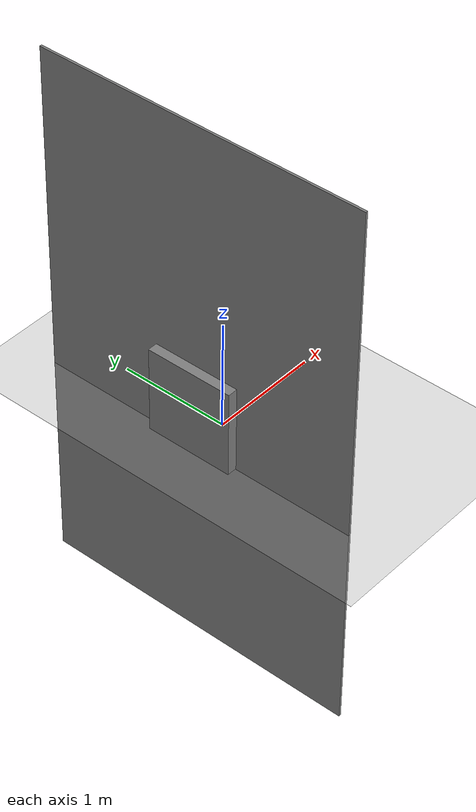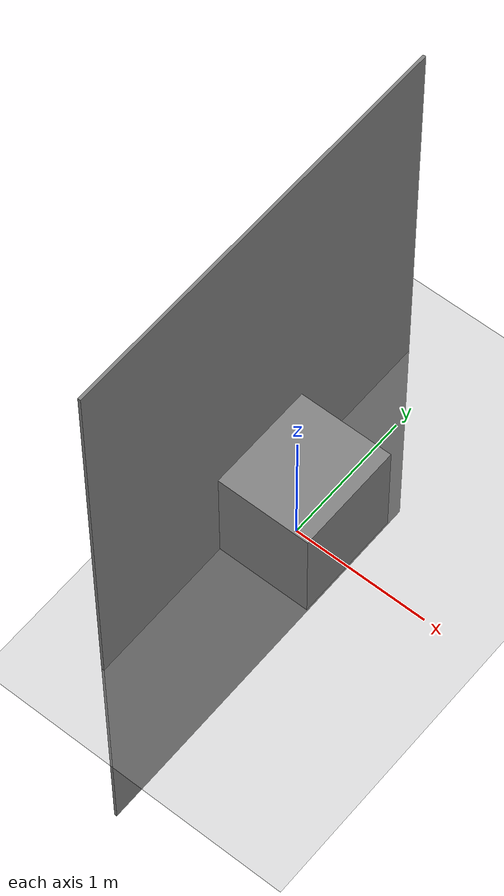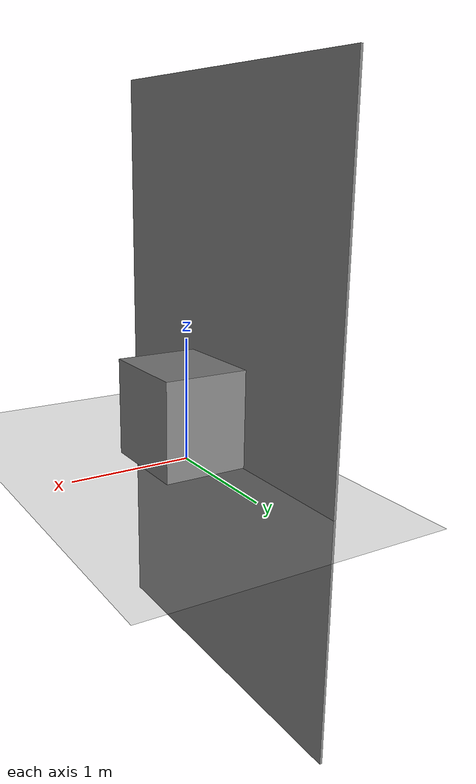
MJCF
<mujoco model="table_arena">
  <asset>
    <texture builtin="gradient" height="256" rgb1=".9 .9 1." rgb2=".2 .3 .4" type="skybox" width="256"/>
    <texture file="../textures/gray-plaster.png" type="2d" name="texplane"/>
    <material name="floorplane" reflectance="0.0" shininess="0.0" specular="0.0" texrepeat="2 2" texture="texplane" texuniform="true"/>

    <!-- ceramic table texture and material-->
    <texture file="../textures/ceramic.png" type="cube" name="tex-ceramic"/>
    <material name="wall_ceramic" reflectance="0.0" shininess="0.0" specular="0.2" texrepeat="1 1" texture="tex-ceramic" />

    <!-- ceramic table texture and material-->
    <texture file="../textures/manulab.png" type="cube" name="tex-felt"/>
    <material name="table_felt" reflectance="0.0" shininess="0.0" specular="0.2" texrepeat="1 1" texture="tex-felt" />

    <!-- ceramic table texture and material-->
    <texture file="../textures/new_green.png" type="cube" name="tex-felt1"/>
    <material name="table_felt_green" reflectance="0.0" shininess="0.0" specular="0.2" texrepeat="1 1" texture="tex-felt1" />

    <!-- steel legs -->
    <texture file="../textures/steel-brushed.png" type="cube" name="tex-steel-brushed"/>
    <material name="table_legs_metal" reflectance="0.8" shininess="0.8" texrepeat="1 1" texture="tex-steel-brushed" />
    <!-- concrete walls -->
    <texture file="../textures/ceramic.png" type="2d" name="tex-cream-plaster"/>
    <material name="walls_mat" reflectance="0.0" shininess="0.0" specular="0.1" texrepeat="1 1" texture="tex-cream-plaster" texuniform="true" />

    <!-- added table texture and material for domain randomization -->
    <texture  name="textable" builtin="flat" height="512" width="512" rgb1="0.5 0.5 0.5" rgb2="0.5 0.5 0.5"/>
    <material name="table_mat" texture="textable" />

  </asset>
  <worldbody>
    <!-- Floor -->
    <geom condim="3" material="floorplane" name="floor" pos="0 0 0" size="3 3 .125" type="plane"/>
    <!-- Walls (visual only) -->
    <geom pos="-0.3 0 0.5" quat="0.5 0.5 -0.5 -0.5" size="1.5 2.5 0.01" type="box" group="0" name="wall_collision1" friction="1 0.005 0.0001"/>
    <geom pos="-0.3 0 0.5" quat="0.5 0.5 -0.5 -0.5" size="1.5 2.5 0.01" type="box" conaffinity="0" contype="0" group="1" name="wall_front1" material="walls_mat"/>

    <!--geom pos="-0.3 0.6 1.5" quat="0.5 0.5 -0.5 -0.5" size="0.05 1.5 0.1" type="box" group="0" name="wall_collision2" material="table_ceramic"/-->
    <!--geom pos="-0.3 0.6 1.5" quat="0.5 0.5 -0.5 -0.5" size="0.05 1.5 0.1" type="box" conaffinity="0" contype="0" group="1" name="wall_front2" material="wall_ceramic"/-->

    <!--Changed from, last line: pos ="-3 0 1.5"-->
    <!--New walls-->

    <!-- Table body -->
    <body name="table" pos="0 0 0.4">
      <geom pos="0 0 0" size="0.4 0.4 0.4" type="box" group="0" name="table_collision" friction="1 0.005 0.0001"/>
      <geom pos="0 0 0" size="0.4 0.4 0.4" type="box" conaffinity="0" contype="0" group="1" name="table_visual" material="table_felt_green"/>
      <site pos="0 0 0.4" name="table_top" size="0.001 0.001 0.001" rgba="0 0 0 0"/>
      <!-- Legs (visual only) -->
      <geom pos="0 0 0" size="0.05 0.1" type="cylinder" conaffinity="0" contype="0" group="1" name="table_leg1_visual" material="table_legs_metal"/>
      <geom pos="0 0 0" size="0.05 0.1" type="cylinder" conaffinity="0" contype="0" group="1" name="table_leg2_visual" material="table_legs_metal"/>
      <geom pos="0 0 0" size="0.05 0.1" type="cylinder" conaffinity="0" contype="0" group="1" name="table_leg3_visual" material="table_legs_metal"/>
      <geom pos="0 0 0" size="0.05 0.1" type="cylinder" conaffinity="0" contype="0" group="1" name="table_leg4_visual" material="table_legs_metal"/>
    </body>

    <light name="light2" diffuse=".5 .5 .5" dir="-3 0 -0.5" directional="false" pos="1.6 0 1.45" specular="1 1 1" castshadow="false"/>
    <light name="light1" diffuse=".2 .2 .2" dir="-0.4 0 -0.5" directional="false" pos="3 1 4.0" specular="0.3 0.3 0.3" castshadow="true"/>

    <!-- front view -->
    <camera mode="fixed" name="frontview" pos="1.6 0 1.45" quat="0.56 0.43 0.43 0.56"/> <!--Changed from: pos="1.6 0 1.45"-->
    <!-- bird view -->
    <camera mode="fixed" name="birdview" pos="0.7 0 4.0" quat="0.7071 0 0 0.7071"/>
    <!-- agent view -->
    <camera mode="fixed" name="agentview" pos="1.6 0 1.45" quat="0.56 0.43 0.43 0.56"/>
    <!-- side view -->
    <camera mode="fixed" name="sideview" pos="-0.05651774593317116 1.2761224129427358 1.4879572214102434" quat="0.009905065491771751 0.006877963156909582 0.5912228352893879 0.806418094001364" />
  </worldbody>
</mujoco>
